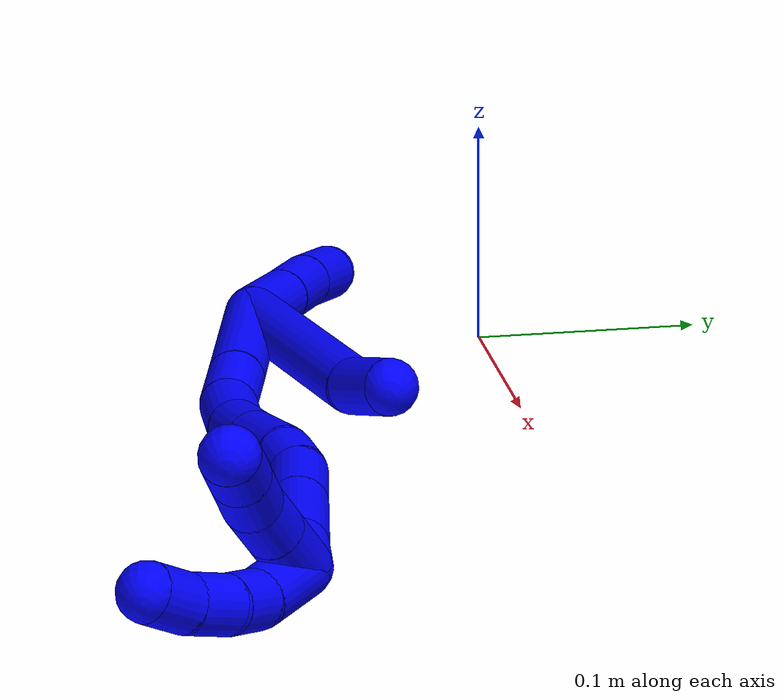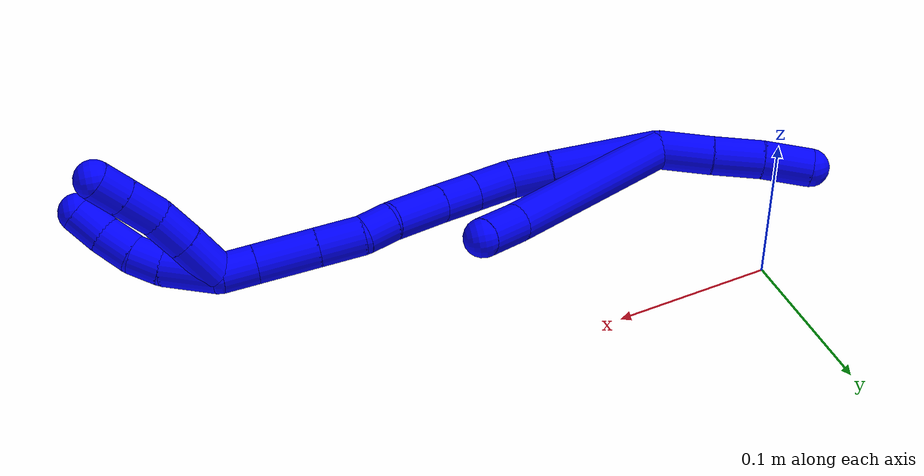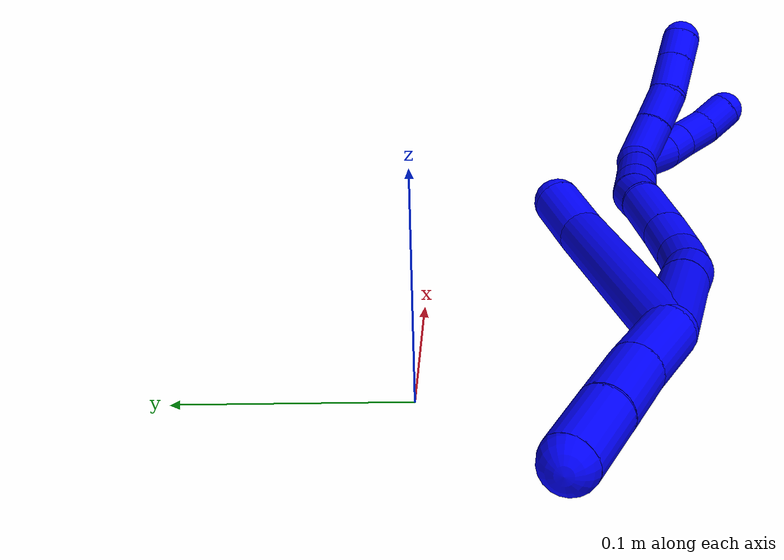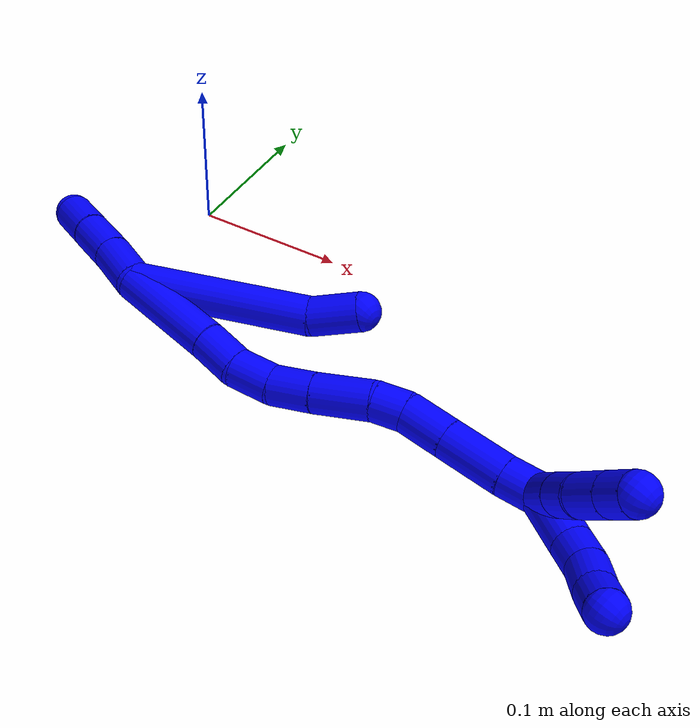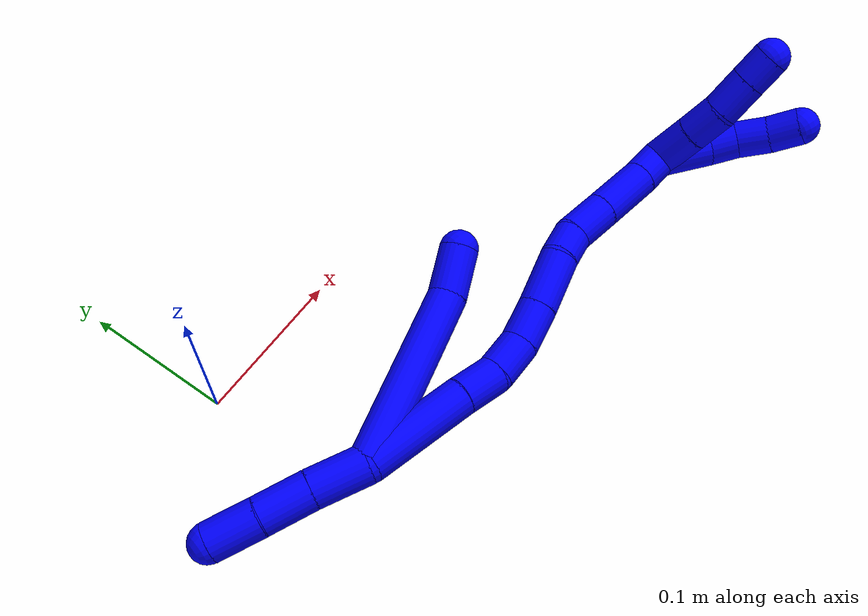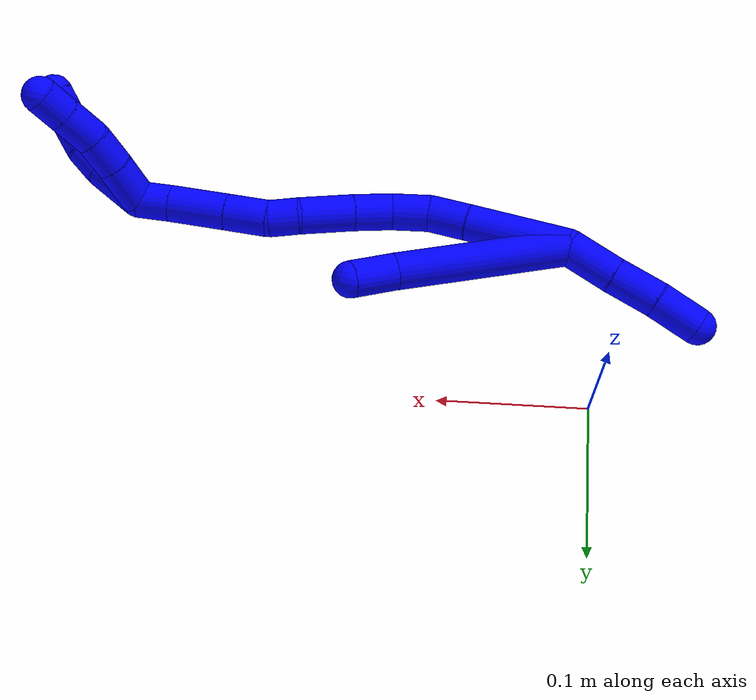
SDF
<sdf version="1.7">
 <world name="default">
  <model name="photoneo_s_sensor">
   <static>1</static>
   <pose>0 0 2 1.57079 1.57079 3.14159</pose>
   <link name="link">
    <inertial><mass>0.1</mass></inertial>
    <sensor name="sensor" type="depth">
     <update_rate>30</update_rate>
     <camera>
      <horizontal_fov>1.22</horizontal_fov>
      <image><width>1920</width><height>1200</height><format>B8G8R8</format></image>
      <clip><near>0.1</near><far>4</far></clip>
      <depth_camera><output>points</output></depth_camera>
     </camera>
     <plugin name="camera_plugin" filename="libgazebo_ros_depth_camera.so">
      <baseline>0.2</baseline>
      <alwaysOn>1</alwaysOn>
      <updateRate>0.0</updateRate>
      <cameraName>camera_ir</cameraName>
      <imageTopicName>/camera/color/image_raw</imageTopicName>
      <cameraInfoTopicName>/camera/color/camera_info</cameraInfoTopicName>
      <depthImageTopicName>/camera/depth/image_raw</depthImageTopicName>
      <depthImageCameraInfoTopicName>/camera/depth/camera_info</depthImageCameraInfoTopicName>
      <pointCloudTopicName>/camera/depth/points</pointCloudTopicName>
      <frameName>fr_optical</frameName>
      <pointCloudCutoff>0.1</pointCloudCutoff>
      <pointCloudCutoffMax>2.0</pointCloudCutoffMax>
      <distortionK1>0</distortionK1>
      <distortionK2>0</distortionK2>
      <distortionK3>0</distortionK3>
      <distortionT1>0</distortionT1>
      <distortionT2>0</distortionT2>
      <CxPrime>0</CxPrime>
      <Cx>0</Cx>
      <Cy>0</Cy>
      <focalLength>0</focalLength>
      <hackBaseline>0</hackBaseline>
     </plugin>
    </sensor>
   </link>
  </model>
  <model name="bin">
   <static>1</static>
   <link name="bottom">
    <collision name="collision-bottom">
     <pose>0 0 -0.01 0 -0 0</pose>
     <geometry><box><size>0.8 0.6 0.02</size></box></geometry>
     <surface>
      <friction><ode><mu>100</mu><mu2>100</mu2></ode></friction>
      <contact><collide_bitmask>65535</collide_bitmask></contact>
     </surface>
    </collision>
   </link>
   <link name="west_wall">
    <collision name="collision-west_wall">
     <pose>-0.41 0 0.1 0 -0 0</pose>
     <geometry><box><size>0.02 0.6 0.2</size></box></geometry>
     <surface>
      <friction><ode><mu>100</mu><mu2>100</mu2></ode></friction>
      <contact><collide_bitmask>65535</collide_bitmask></contact>
     </surface>
    </collision>
   </link>
   <link name="east_wall">
    <collision name="collision-east_wall">
     <pose>0.41 0 0.1 0 -0 0</pose>
     <geometry><box><size>0.02 0.6 0.2</size></box></geometry>
     <surface>
      <friction><ode><mu>100</mu><mu2>100</mu2></ode></friction>
      <contact><collide_bitmask>65535</collide_bitmask></contact>
     </surface>
    </collision>
   </link>
   <link name="south_wall">
    <collision name="collision-south_wall">
     <pose>0 -0.31 0.1 0 -0 0</pose>
     <geometry><box><size>0.8 0.02 0.2</size></box></geometry>
     <surface>
      <friction><ode><mu>100</mu><mu2>100</mu2></ode></friction>
      <contact><collide_bitmask>65535</collide_bitmask></contact>
     </surface>
    </collision>
   </link>
   <link name="north_wall">
    <collision name="collision-north_wall">
     <pose>0 0.31 0.1 0 -0 0</pose>
     <geometry><box><size>0.8 0.02 0.2</size></box></geometry>
     <surface>
      <friction><ode><mu>100</mu><mu2>100</mu2></ode></friction>
      <contact><collide_bitmask>65535</collide_bitmask></contact>
     </surface>
    </collision>
   </link>
  </model>
  <model name="1">
   <static>0</static>
   <link name="1">
    <collision name="collision-cylinder-e_1_2_8">
     <pose>-0.008791 -0.025828 0.05237 0.458175 -0.149434 -0.034907</pose>
     <geometry><cylinder><radius>0.0125</radius><length>0.118102</length></cylinder></geometry>
     <surface>
      <friction><ode><mu>1.16</mu><mu2>1.16</mu2><slip1>0</slip1><slip2>0</slip2></ode></friction>
      <contact><ode><kp>1e+06</kp><kd>1</kd><max_vel>0</max_vel><min_depth>0.001</min_depth></ode></contact>
     </surface>
    </collision>
    <visual name="visual-cylinder-e_1_2_8">
     <pose>-0.008791 -0.025828 0.05237 0.458175 -0.149434 -0.034907</pose>
     <geometry><cylinder><radius>0.0125</radius><length>0.118102</length></cylinder></geometry>
     <material><ambient>0 0 1 1</ambient></material>
    </visual>
    <collision name="collision-cylinder-e_2_8_6">
     <pose>-0.017736 -0.062003 0.116877 0.706011 -0.009597 -0.003536</pose>
     <geometry><cylinder><radius>0.0125</radius><length>0.031898</length></cylinder></geometry>
     <surface>
      <friction><ode><mu>1.16</mu><mu2>1.16</mu2><slip1>0</slip1><slip2>0</slip2></ode></friction>
      <contact><ode><kp>1e+06</kp><kd>1</kd><max_vel>0</max_vel><min_depth>0.001</min_depth></ode></contact>
     </surface>
    </collision>
    <visual name="visual-cylinder-e_2_8_6">
     <pose>-0.017736 -0.062003 0.116877 0.706011 -0.009597 -0.003536</pose>
     <geometry><cylinder><radius>0.0125</radius><length>0.031898</length></cylinder></geometry>
     <material><ambient>0 0 1 1</ambient></material>
    </visual>
    <collision name="collision-cylinder-e_1_2_9">
     <pose>-0.005008 -0.002702 -0.016826 2.98236 -0.285837 -2.12909</pose>
     <geometry><cylinder><radius>0.0125</radius><length>0.035524</length></cylinder></geometry>
     <surface>
      <friction><ode><mu>1.16</mu><mu2>1.16</mu2><slip1>0</slip1><slip2>0</slip2></ode></friction>
      <contact><ode><kp>1e+06</kp><kd>1</kd><max_vel>0</max_vel><min_depth>0.001</min_depth></ode></contact>
     </surface>
    </collision>
    <visual name="visual-cylinder-e_1_2_9">
     <pose>-0.005008 -0.002702 -0.016826 2.98236 -0.285837 -2.12909</pose>
     <geometry><cylinder><radius>0.0125</radius><length>0.035524</length></cylinder></geometry>
     <material><ambient>0 0 1 1</ambient></material>
    </visual>
    <collision name="collision-cylinder-e_2_9_10">
     <pose>-0.014304 -0.00707 -0.049266 3.03532 -0.266575 -2.38634</pose>
     <geometry><cylinder><radius>0.0125</radius><length>0.032556</length></cylinder></geometry>
     <surface>
      <friction><ode><mu>1.16</mu><mu2>1.16</mu2><slip1>0</slip1><slip2>0</slip2></ode></friction>
      <contact><ode><kp>1e+06</kp><kd>1</kd><max_vel>0</max_vel><min_depth>0.001</min_depth></ode></contact>
     </surface>
    </collision>
    <visual name="visual-cylinder-e_2_9_10">
     <pose>-0.014304 -0.00707 -0.049266 3.03532 -0.266575 -2.38634</pose>
     <geometry><cylinder><radius>0.0125</radius><length>0.032556</length></cylinder></geometry>
     <material><ambient>0 0 1 1</ambient></material>
    </visual>
    <collision name="collision-cylinder-e_3_10_5">
     <pose>-0.024059 -0.010304 -0.079792 3.03676 -0.349612 -2.56407</pose>
     <geometry><cylinder><radius>0.0125</radius><length>0.03192</length></cylinder></geometry>
     <surface>
      <friction><ode><mu>1.16</mu><mu2>1.16</mu2><slip1>0</slip1><slip2>0</slip2></ode></friction>
      <contact><ode><kp>1e+06</kp><kd>1</kd><max_vel>0</max_vel><min_depth>0.001</min_depth></ode></contact>
     </surface>
    </collision>
    <visual name="visual-cylinder-e_3_10_5">
     <pose>-0.024059 -0.010304 -0.079792 3.03676 -0.349612 -2.56407</pose>
     <geometry><cylinder><radius>0.0125</radius><length>0.03192</length></cylinder></geometry>
     <material><ambient>0 0 1 1</ambient></material>
    </visual>
    <collision name="collision-cylinder-e_1_2_11">
     <pose>0.000211 0.000246 0.035094 -0.007007 0.006008 -2.1e-05</pose>
     <geometry><cylinder><radius>0.0125</radius><length>0.07019</length></cylinder></geometry>
     <surface>
      <friction><ode><mu>1.16</mu><mu2>1.16</mu2><slip1>0</slip1><slip2>0</slip2></ode></friction>
      <contact><ode><kp>1e+06</kp><kd>1</kd><max_vel>0</max_vel><min_depth>0.001</min_depth></ode></contact>
     </surface>
    </collision>
    <visual name="visual-cylinder-e_1_2_11">
     <pose>0.000211 0.000246 0.035094 -0.007007 0.006008 -2.1e-05</pose>
     <geometry><cylinder><radius>0.0125</radius><length>0.07019</length></cylinder></geometry>
     <material><ambient>0 0 1 1</ambient></material>
    </visual>
    <collision name="collision-cylinder-e_2_11_12">
     <pose>6e-06 0.00124 0.083705 -0.05529 -0.030679 0.000848</pose>
     <geometry><cylinder><radius>0.0125</radius><length>0.027091</length></cylinder></geometry>
     <surface>
      <friction><ode><mu>1.16</mu><mu2>1.16</mu2><slip1>0</slip1><slip2>0</slip2></ode></friction>
      <contact><ode><kp>1e+06</kp><kd>1</kd><max_vel>0</max_vel><min_depth>0.001</min_depth></ode></contact>
     </surface>
    </collision>
    <visual name="visual-cylinder-e_2_11_12">
     <pose>6e-06 0.00124 0.083705 -0.05529 -0.030679 0.000848</pose>
     <geometry><cylinder><radius>0.0125</radius><length>0.027091</length></cylinder></geometry>
     <material><ambient>0 0 1 1</ambient></material>
    </visual>
    <collision name="collision-cylinder-e_3_12_13">
     <pose>-0.001552 -0.000825 0.110017 0.216466 -0.086996 -0.009459</pose>
     <geometry><cylinder><radius>0.0125</radius><length>0.026298</length></cylinder></geometry>
     <surface>
      <friction><ode><mu>1.16</mu><mu2>1.16</mu2><slip1>0</slip1><slip2>0</slip2></ode></friction>
      <contact><ode><kp>1e+06</kp><kd>1</kd><max_vel>0</max_vel><min_depth>0.001</min_depth></ode></contact>
     </surface>
    </collision>
    <visual name="visual-cylinder-e_3_12_13">
     <pose>-0.001552 -0.000825 0.110017 0.216466 -0.086996 -0.009459</pose>
     <geometry><cylinder><radius>0.0125</radius><length>0.026298</length></cylinder></geometry>
     <material><ambient>0 0 1 1</ambient></material>
    </visual>
    <collision name="collision-cylinder-e_4_13_14">
     <pose>-0.003024 -0.009472 0.134941 0.448256 -0.02448 -0.005581</pose>
     <geometry><cylinder><radius>0.0125</radius><length>0.026927</length></cylinder></geometry>
     <surface>
      <friction><ode><mu>1.16</mu><mu2>1.16</mu2><slip1>0</slip1><slip2>0</slip2></ode></friction>
      <contact><ode><kp>1e+06</kp><kd>1</kd><max_vel>0</max_vel><min_depth>0.001</min_depth></ode></contact>
     </surface>
    </collision>
    <visual name="visual-cylinder-e_4_13_14">
     <pose>-0.003024 -0.009472 0.134941 0.448256 -0.02448 -0.005581</pose>
     <geometry><cylinder><radius>0.0125</radius><length>0.026927</length></cylinder></geometry>
     <material><ambient>0 0 1 1</ambient></material>
    </visual>
    <collision name="collision-cylinder-e_5_14_15">
     <pose>-0.003969 -0.024215 0.163365 0.500378 -0.033126 -0.008466</pose>
     <geometry><cylinder><radius>0.0125</radius><length>0.037164</length></cylinder></geometry>
     <surface>
      <friction><ode><mu>1.16</mu><mu2>1.16</mu2><slip1>0</slip1><slip2>0</slip2></ode></friction>
      <contact><ode><kp>1e+06</kp><kd>1</kd><max_vel>0</max_vel><min_depth>0.001</min_depth></ode></contact>
     </surface>
    </collision>
    <visual name="visual-cylinder-e_5_14_15">
     <pose>-0.003969 -0.024215 0.163365 0.500378 -0.033126 -0.008466</pose>
     <geometry><cylinder><radius>0.0125</radius><length>0.037164</length></cylinder></geometry>
     <material><ambient>0 0 1 1</ambient></material>
    </visual>
    <collision name="collision-cylinder-e_6_15_16">
     <pose>-0.006346 -0.036482 0.189204 0.338189 -0.172403 -0.029504</pose>
     <geometry><cylinder><radius>0.0125</radius><length>0.020539</length></cylinder></geometry>
     <surface>
      <friction><ode><mu>1.16</mu><mu2>1.16</mu2><slip1>0</slip1><slip2>0</slip2></ode></friction>
      <contact><ode><kp>1e+06</kp><kd>1</kd><max_vel>0</max_vel><min_depth>0.001</min_depth></ode></contact>
     </surface>
    </collision>
    <visual name="visual-cylinder-e_6_15_16">
     <pose>-0.006346 -0.036482 0.189204 0.338189 -0.172403 -0.029504</pose>
     <geometry><cylinder><radius>0.0125</radius><length>0.020539</length></cylinder></geometry>
     <material><ambient>0 0 1 1</ambient></material>
    </visual>
    <collision name="collision-cylinder-e_7_16_17">
     <pose>-0.008797 -0.040897 0.213378 0.072219 -0.046934 -0.001696</pose>
     <geometry><cylinder><radius>0.0125</radius><length>0.029367</length></cylinder></geometry>
     <surface>
      <friction><ode><mu>1.16</mu><mu2>1.16</mu2><slip1>0</slip1><slip2>0</slip2></ode></friction>
      <contact><ode><kp>1e+06</kp><kd>1</kd><max_vel>0</max_vel><min_depth>0.001</min_depth></ode></contact>
     </surface>
    </collision>
    <visual name="visual-cylinder-e_7_16_17">
     <pose>-0.008797 -0.040897 0.213378 0.072219 -0.046934 -0.001696</pose>
     <geometry><cylinder><radius>0.0125</radius><length>0.029367</length></cylinder></geometry>
     <material><ambient>0 0 1 1</ambient></material>
    </visual>
    <collision name="collision-cylinder-e_8_17_18">
     <pose>-0.010405 -0.043526 0.247854 0.078953 -0.046175 -0.001824</pose>
     <geometry><cylinder><radius>0.0125</radius><length>0.039861</length></cylinder></geometry>
     <surface>
      <friction><ode><mu>1.16</mu><mu2>1.16</mu2><slip1>0</slip1><slip2>0</slip2></ode></friction>
      <contact><ode><kp>1e+06</kp><kd>1</kd><max_vel>0</max_vel><min_depth>0.001</min_depth></ode></contact>
     </surface>
    </collision>
    <visual name="visual-cylinder-e_8_17_18">
     <pose>-0.010405 -0.043526 0.247854 0.078953 -0.046175 -0.001824</pose>
     <geometry><cylinder><radius>0.0125</radius><length>0.039861</length></cylinder></geometry>
     <material><ambient>0 0 1 1</ambient></material>
    </visual>
    <collision name="collision-cylinder-e_9_18_1">
     <pose>-0.011648 -0.046852 0.278841 0.156381 -0.028635 -0.002244</pose>
     <geometry><cylinder><radius>0.0125</radius><length>0.022563</length></cylinder></geometry>
     <surface>
      <friction><ode><mu>1.16</mu><mu2>1.16</mu2><slip1>0</slip1><slip2>0</slip2></ode></friction>
      <contact><ode><kp>1e+06</kp><kd>1</kd><max_vel>0</max_vel><min_depth>0.001</min_depth></ode></contact>
     </surface>
    </collision>
    <visual name="visual-cylinder-e_9_18_1">
     <pose>-0.011648 -0.046852 0.278841 0.156381 -0.028635 -0.002244</pose>
     <geometry><cylinder><radius>0.0125</radius><length>0.022563</length></cylinder></geometry>
     <material><ambient>0 0 1 1</ambient></material>
    </visual>
    <collision name="collision-cylinder-e_1_1_19">
     <pose>-0.007431 -0.042733 0.306326 -0.345022 0.255694 -0.04479</pose>
     <geometry><cylinder><radius>0.0125</radius><length>0.035908</length></cylinder></geometry>
     <surface>
      <friction><ode><mu>1.16</mu><mu2>1.16</mu2><slip1>0</slip1><slip2>0</slip2></ode></friction>
      <contact><ode><kp>1e+06</kp><kd>1</kd><max_vel>0</max_vel><min_depth>0.001</min_depth></ode></contact>
     </surface>
    </collision>
    <visual name="visual-cylinder-e_1_1_19">
     <pose>-0.007431 -0.042733 0.306326 -0.345022 0.255694 -0.04479</pose>
     <geometry><cylinder><radius>0.0125</radius><length>0.035908</length></cylinder></geometry>
     <material><ambient>0 0 1 1</ambient></material>
    </visual>
    <collision name="collision-cylinder-e_2_19_20">
     <pose>0.002067 -0.034008 0.330966 -0.331046 0.514434 -0.087827</pose>
     <geometry><cylinder><radius>0.0125</radius><length>0.020147</length></cylinder></geometry>
     <surface>
      <friction><ode><mu>1.16</mu><mu2>1.16</mu2><slip1>0</slip1><slip2>0</slip2></ode></friction>
      <contact><ode><kp>1e+06</kp><kd>1</kd><max_vel>0</max_vel><min_depth>0.001</min_depth></ode></contact>
     </surface>
    </collision>
    <visual name="visual-cylinder-e_2_19_20">
     <pose>0.002067 -0.034008 0.330966 -0.331046 0.514434 -0.087827</pose>
     <geometry><cylinder><radius>0.0125</radius><length>0.020147</length></cylinder></geometry>
     <material><ambient>0 0 1 1</ambient></material>
    </visual>
    <collision name="collision-cylinder-e_3_20_21">
     <pose>0.01406 -0.027057 0.346846 -0.495627 0.684413 -0.179772</pose>
     <geometry><cylinder><radius>0.0125</radius><length>0.02226</length></cylinder></geometry>
     <surface>
      <friction><ode><mu>1.16</mu><mu2>1.16</mu2><slip1>0</slip1><slip2>0</slip2></ode></friction>
      <contact><ode><kp>1e+06</kp><kd>1</kd><max_vel>0</max_vel><min_depth>0.001</min_depth></ode></contact>
     </surface>
    </collision>
    <visual name="visual-cylinder-e_3_20_21">
     <pose>0.01406 -0.027057 0.346846 -0.495627 0.684413 -0.179772</pose>
     <geometry><cylinder><radius>0.0125</radius><length>0.02226</length></cylinder></geometry>
     <material><ambient>0 0 1 1</ambient></material>
    </visual>
    <collision name="collision-cylinder-e_4_21_4">
     <pose>0.029175 -0.020322 0.361167 -0.372692 0.840614 -0.168129</pose>
     <geometry><cylinder><radius>0.0125</radius><length>0.021685</length></cylinder></geometry>
     <surface>
      <friction><ode><mu>1.16</mu><mu2>1.16</mu2><slip1>0</slip1><slip2>0</slip2></ode></friction>
      <contact><ode><kp>1e+06</kp><kd>1</kd><max_vel>0</max_vel><min_depth>0.001</min_depth></ode></contact>
     </surface>
    </collision>
    <visual name="visual-cylinder-e_4_21_4">
     <pose>0.029175 -0.020322 0.361167 -0.372692 0.840614 -0.168129</pose>
     <geometry><cylinder><radius>0.0125</radius><length>0.021685</length></cylinder></geometry>
     <material><ambient>0 0 1 1</ambient></material>
    </visual>
    <collision name="collision-cylinder-e_1_1_22">
     <pose>0.000334 -0.050775 0.298143 0.259411 0.969299 0.137145</pose>
     <geometry><cylinder><radius>0.0125</radius><length>0.02985</length></cylinder></geometry>
     <surface>
      <friction><ode><mu>1.16</mu><mu2>1.16</mu2><slip1>0</slip1><slip2>0</slip2></ode></friction>
      <contact><ode><kp>1e+06</kp><kd>1</kd><max_vel>0</max_vel><min_depth>0.001</min_depth></ode></contact>
     </surface>
    </collision>
    <visual name="visual-cylinder-e_1_1_22">
     <pose>0.000334 -0.050775 0.298143 0.259411 0.969299 0.137145</pose>
     <geometry><cylinder><radius>0.0125</radius><length>0.02985</length></cylinder></geometry>
     <material><ambient>0 0 1 1</ambient></material>
    </visual>
    <collision name="collision-cylinder-e_2_22_23">
     <pose>0.022241 -0.054796 0.313221 0.26203 0.930125 0.132044</pose>
     <geometry><cylinder><radius>0.0125</radius><length>0.023952</length></cylinder></geometry>
     <surface>
      <friction><ode><mu>1.16</mu><mu2>1.16</mu2><slip1>0</slip1><slip2>0</slip2></ode></friction>
      <contact><ode><kp>1e+06</kp><kd>1</kd><max_vel>0</max_vel><min_depth>0.001</min_depth></ode></contact>
     </surface>
    </collision>
    <visual name="visual-cylinder-e_2_22_23">
     <pose>0.022241 -0.054796 0.313221 0.26203 0.930125 0.132044</pose>
     <geometry><cylinder><radius>0.0125</radius><length>0.023952</length></cylinder></geometry>
     <material><ambient>0 0 1 1</ambient></material>
    </visual>
    <collision name="collision-cylinder-e_3_23_24">
     <pose>0.040711 -0.060439 0.32867 0.417838 0.759606 0.168862</pose>
     <geometry><cylinder><radius>0.0125</radius><length>0.025757</length></cylinder></geometry>
     <surface>
      <friction><ode><mu>1.16</mu><mu2>1.16</mu2><slip1>0</slip1><slip2>0</slip2></ode></friction>
      <contact><ode><kp>1e+06</kp><kd>1</kd><max_vel>0</max_vel><min_depth>0.001</min_depth></ode></contact>
     </surface>
    </collision>
    <visual name="visual-cylinder-e_3_23_24">
     <pose>0.040711 -0.060439 0.32867 0.417838 0.759606 0.168862</pose>
     <geometry><cylinder><radius>0.0125</radius><length>0.025757</length></cylinder></geometry>
     <material><ambient>0 0 1 1</ambient></material>
    </visual>
    <collision name="collision-cylinder-e_4_24_3">
     <pose>0.05659 -0.067202 0.344021 0.411286 0.755923 0.165266</pose>
     <geometry><cylinder><radius>0.0125</radius><length>0.020441</length></cylinder></geometry>
     <surface>
      <friction><ode><mu>1.16</mu><mu2>1.16</mu2><slip1>0</slip1><slip2>0</slip2></ode></friction>
      <contact><ode><kp>1e+06</kp><kd>1</kd><max_vel>0</max_vel><min_depth>0.001</min_depth></ode></contact>
     </surface>
    </collision>
    <visual name="visual-cylinder-e_4_24_3">
     <pose>0.05659 -0.067202 0.344021 0.411286 0.755923 0.165266</pose>
     <geometry><cylinder><radius>0.0125</radius><length>0.020441</length></cylinder></geometry>
     <material><ambient>0 0 1 1</ambient></material>
    </visual>
    <collision name="collision-sphere-3">
     <pose>0.063601 -0.070175 0.350838 0 -0 0</pose>
     <geometry><sphere><radius>0.0125</radius></sphere></geometry>
     <surface>
      <friction><ode><mu>1.16</mu><mu2>1.16</mu2><slip1>0</slip1><slip2>0</slip2></ode></friction>
      <contact><ode><kp>1e+06</kp><kd>1</kd><max_vel>0</max_vel><min_depth>0.001</min_depth></ode></contact>
     </surface>
    </collision>
    <visual name="visual-sphere-3">
     <pose>0.063601 -0.070175 0.350838 0 -0 0</pose>
     <geometry><sphere><radius>0.0125</radius></sphere></geometry>
     <material><ambient>0 0 1 1</ambient></material>
    </visual>
    <collision name="collision-sphere-24">
     <pose>0.049579 -0.064229 0.337204 0 -0 0</pose>
     <geometry><sphere><radius>0.0125</radius></sphere></geometry>
     <surface>
      <friction><ode><mu>1.16</mu><mu2>1.16</mu2><slip1>0</slip1><slip2>0</slip2></ode></friction>
      <contact><ode><kp>1e+06</kp><kd>1</kd><max_vel>0</max_vel><min_depth>0.001</min_depth></ode></contact>
     </surface>
    </collision>
    <visual name="visual-sphere-24">
     <pose>0.049579 -0.064229 0.337204 0 -0 0</pose>
     <geometry><sphere><radius>0.0125</radius></sphere></geometry>
     <material><ambient>0 0 1 1</ambient></material>
    </visual>
    <collision name="collision-sphere-23">
     <pose>0.031842 -0.05665 0.320135 0 -0 0</pose>
     <geometry><sphere><radius>0.0125</radius></sphere></geometry>
     <surface>
      <friction><ode><mu>1.16</mu><mu2>1.16</mu2><slip1>0</slip1><slip2>0</slip2></ode></friction>
      <contact><ode><kp>1e+06</kp><kd>1</kd><max_vel>0</max_vel><min_depth>0.001</min_depth></ode></contact>
     </surface>
    </collision>
    <visual name="visual-sphere-23">
     <pose>0.031842 -0.05665 0.320135 0 -0 0</pose>
     <geometry><sphere><radius>0.0125</radius></sphere></geometry>
     <material><ambient>0 0 1 1</ambient></material>
    </visual>
    <collision name="collision-sphere-22">
     <pose>0.01264 -0.052941 0.306306 0 -0 0</pose>
     <geometry><sphere><radius>0.0125</radius></sphere></geometry>
     <surface>
      <friction><ode><mu>1.16</mu><mu2>1.16</mu2><slip1>0</slip1><slip2>0</slip2></ode></friction>
      <contact><ode><kp>1e+06</kp><kd>1</kd><max_vel>0</max_vel><min_depth>0.001</min_depth></ode></contact>
     </surface>
    </collision>
    <visual name="visual-sphere-22">
     <pose>0.01264 -0.052941 0.306306 0 -0 0</pose>
     <geometry><sphere><radius>0.0125</radius></sphere></geometry>
     <material><ambient>0 0 1 1</ambient></material>
    </visual>
    <collision name="collision-sphere-4">
     <pose>0.037253 -0.017689 0.367903 0 -0 0</pose>
     <geometry><sphere><radius>0.0125</radius></sphere></geometry>
     <surface>
      <friction><ode><mu>1.16</mu><mu2>1.16</mu2><slip1>0</slip1><slip2>0</slip2></ode></friction>
      <contact><ode><kp>1e+06</kp><kd>1</kd><max_vel>0</max_vel><min_depth>0.001</min_depth></ode></contact>
     </surface>
    </collision>
    <visual name="visual-sphere-4">
     <pose>0.037253 -0.017689 0.367903 0 -0 0</pose>
     <geometry><sphere><radius>0.0125</radius></sphere></geometry>
     <material><ambient>0 0 1 1</ambient></material>
    </visual>
    <collision name="collision-sphere-21">
     <pose>0.021097 -0.022955 0.354431 0 -0 0</pose>
     <geometry><sphere><radius>0.0125</radius></sphere></geometry>
     <surface>
      <friction><ode><mu>1.16</mu><mu2>1.16</mu2><slip1>0</slip1><slip2>0</slip2></ode></friction>
      <contact><ode><kp>1e+06</kp><kd>1</kd><max_vel>0</max_vel><min_depth>0.001</min_depth></ode></contact>
     </surface>
    </collision>
    <visual name="visual-sphere-21">
     <pose>0.021097 -0.022955 0.354431 0 -0 0</pose>
     <geometry><sphere><radius>0.0125</radius></sphere></geometry>
     <material><ambient>0 0 1 1</ambient></material>
    </visual>
    <collision name="collision-sphere-20">
     <pose>0.007023 -0.031158 0.33926 0 -0 0</pose>
     <geometry><sphere><radius>0.0125</radius></sphere></geometry>
     <surface>
      <friction><ode><mu>1.16</mu><mu2>1.16</mu2><slip1>0</slip1><slip2>0</slip2></ode></friction>
      <contact><ode><kp>1e+06</kp><kd>1</kd><max_vel>0</max_vel><min_depth>0.001</min_depth></ode></contact>
     </surface>
    </collision>
    <visual name="visual-sphere-20">
     <pose>0.007023 -0.031158 0.33926 0 -0 0</pose>
     <geometry><sphere><radius>0.0125</radius></sphere></geometry>
     <material><ambient>0 0 1 1</ambient></material>
    </visual>
    <collision name="collision-sphere-5">
     <pose>-0.029526 -0.011873 -0.094705 0 -0 0</pose>
     <geometry><sphere><radius>0.0125</radius></sphere></geometry>
     <surface>
      <friction><ode><mu>1.16</mu><mu2>1.16</mu2><slip1>0</slip1><slip2>0</slip2></ode></friction>
      <contact><ode><kp>1e+06</kp><kd>1</kd><max_vel>0</max_vel><min_depth>0.001</min_depth></ode></contact>
     </surface>
    </collision>
    <visual name="visual-sphere-5">
     <pose>-0.029526 -0.011873 -0.094705 0 -0 0</pose>
     <geometry><sphere><radius>0.0125</radius></sphere></geometry>
     <material><ambient>0 0 1 1</ambient></material>
    </visual>
    <collision name="collision-sphere-10">
     <pose>-0.018592 -0.008735 -0.06488 0 -0 0</pose>
     <geometry><sphere><radius>0.0125</radius></sphere></geometry>
     <surface>
      <friction><ode><mu>1.16</mu><mu2>1.16</mu2><slip1>0</slip1><slip2>0</slip2></ode></friction>
      <contact><ode><kp>1e+06</kp><kd>1</kd><max_vel>0</max_vel><min_depth>0.001</min_depth></ode></contact>
     </surface>
    </collision>
    <visual name="visual-sphere-10">
     <pose>-0.018592 -0.008735 -0.06488 0 -0 0</pose>
     <geometry><sphere><radius>0.0125</radius></sphere></geometry>
     <material><ambient>0 0 1 1</ambient></material>
    </visual>
    <collision name="collision-sphere-6">
     <pose>-0.017889 -0.07235 0.129013 0 -0 0</pose>
     <geometry><sphere><radius>0.0125</radius></sphere></geometry>
     <surface>
      <friction><ode><mu>1.16</mu><mu2>1.16</mu2><slip1>0</slip1><slip2>0</slip2></ode></friction>
      <contact><ode><kp>1e+06</kp><kd>1</kd><max_vel>0</max_vel><min_depth>0.001</min_depth></ode></contact>
     </surface>
    </collision>
    <visual name="visual-sphere-6">
     <pose>-0.017889 -0.07235 0.129013 0 -0 0</pose>
     <geometry><sphere><radius>0.0125</radius></sphere></geometry>
     <material><ambient>0 0 1 1</ambient></material>
    </visual>
    <collision name="collision-sphere-9">
     <pose>-0.010016 -0.005404 -0.033651 0 -0 0</pose>
     <geometry><sphere><radius>0.0125</radius></sphere></geometry>
     <surface>
      <friction><ode><mu>1.16</mu><mu2>1.16</mu2><slip1>0</slip1><slip2>0</slip2></ode></friction>
      <contact><ode><kp>1e+06</kp><kd>1</kd><max_vel>0</max_vel><min_depth>0.001</min_depth></ode></contact>
     </surface>
    </collision>
    <visual name="visual-sphere-9">
     <pose>-0.010016 -0.005404 -0.033651 0 -0 0</pose>
     <geometry><sphere><radius>0.0125</radius></sphere></geometry>
     <material><ambient>0 0 1 1</ambient></material>
    </visual>
    <collision name="collision-sphere-2">
     <geometry><sphere><radius>0.0125</radius></sphere></geometry>
     <surface>
      <friction><ode><mu>1.16</mu><mu2>1.16</mu2><slip1>0</slip1><slip2>0</slip2></ode></friction>
      <contact><ode><kp>1e+06</kp><kd>1</kd><max_vel>0</max_vel><min_depth>0.001</min_depth></ode></contact>
     </surface>
    </collision>
    <visual name="visual-sphere-2">
     <geometry><sphere><radius>0.0125</radius></sphere></geometry>
     <material><ambient>0 0 1 1</ambient></material>
    </visual>
    <collision name="collision-sphere-19">
     <pose>-0.00289 -0.036859 0.322673 0 -0 0</pose>
     <geometry><sphere><radius>0.0125</radius></sphere></geometry>
     <surface>
      <friction><ode><mu>1.16</mu><mu2>1.16</mu2><slip1>0</slip1><slip2>0</slip2></ode></friction>
      <contact><ode><kp>1e+06</kp><kd>1</kd><max_vel>0</max_vel><min_depth>0.001</min_depth></ode></contact>
     </surface>
    </collision>
    <visual name="visual-sphere-19">
     <pose>-0.00289 -0.036859 0.322673 0 -0 0</pose>
     <geometry><sphere><radius>0.0125</radius></sphere></geometry>
     <material><ambient>0 0 1 1</ambient></material>
    </visual>
    <collision name="collision-sphere-8">
     <pose>-0.017583 -0.051656 0.104741 0 -0 0</pose>
     <geometry><sphere><radius>0.0125</radius></sphere></geometry>
     <surface>
      <friction><ode><mu>1.16</mu><mu2>1.16</mu2><slip1>0</slip1><slip2>0</slip2></ode></friction>
      <contact><ode><kp>1e+06</kp><kd>1</kd><max_vel>0</max_vel><min_depth>0.001</min_depth></ode></contact>
     </surface>
    </collision>
    <visual name="visual-sphere-8">
     <pose>-0.017583 -0.051656 0.104741 0 -0 0</pose>
     <geometry><sphere><radius>0.0125</radius></sphere></geometry>
     <material><ambient>0 0 1 1</ambient></material>
    </visual>
    <collision name="collision-sphere-11">
     <pose>0.000422 0.000492 0.070187 0 -0 0</pose>
     <geometry><sphere><radius>0.0125</radius></sphere></geometry>
     <surface>
      <friction><ode><mu>1.16</mu><mu2>1.16</mu2><slip1>0</slip1><slip2>0</slip2></ode></friction>
      <contact><ode><kp>1e+06</kp><kd>1</kd><max_vel>0</max_vel><min_depth>0.001</min_depth></ode></contact>
     </surface>
    </collision>
    <visual name="visual-sphere-11">
     <pose>0.000422 0.000492 0.070187 0 -0 0</pose>
     <geometry><sphere><radius>0.0125</radius></sphere></geometry>
     <material><ambient>0 0 1 1</ambient></material>
    </visual>
    <collision name="collision-sphere-12">
     <pose>-0.000409 0.001988 0.097224 0 -0 0</pose>
     <geometry><sphere><radius>0.0125</radius></sphere></geometry>
     <surface>
      <friction><ode><mu>1.16</mu><mu2>1.16</mu2><slip1>0</slip1><slip2>0</slip2></ode></friction>
      <contact><ode><kp>1e+06</kp><kd>1</kd><max_vel>0</max_vel><min_depth>0.001</min_depth></ode></contact>
     </surface>
    </collision>
    <visual name="visual-sphere-12">
     <pose>-0.000409 0.001988 0.097224 0 -0 0</pose>
     <geometry><sphere><radius>0.0125</radius></sphere></geometry>
     <material><ambient>0 0 1 1</ambient></material>
    </visual>
    <collision name="collision-sphere-13">
     <pose>-0.002694 -0.003639 0.122811 0 -0 0</pose>
     <geometry><sphere><radius>0.0125</radius></sphere></geometry>
     <surface>
      <friction><ode><mu>1.16</mu><mu2>1.16</mu2><slip1>0</slip1><slip2>0</slip2></ode></friction>
      <contact><ode><kp>1e+06</kp><kd>1</kd><max_vel>0</max_vel><min_depth>0.001</min_depth></ode></contact>
     </surface>
    </collision>
    <visual name="visual-sphere-13">
     <pose>-0.002694 -0.003639 0.122811 0 -0 0</pose>
     <geometry><sphere><radius>0.0125</radius></sphere></geometry>
     <material><ambient>0 0 1 1</ambient></material>
    </visual>
    <collision name="collision-sphere-14">
     <pose>-0.003353 -0.015305 0.14707 0 -0 0</pose>
     <geometry><sphere><radius>0.0125</radius></sphere></geometry>
     <surface>
      <friction><ode><mu>1.16</mu><mu2>1.16</mu2><slip1>0</slip1><slip2>0</slip2></ode></friction>
      <contact><ode><kp>1e+06</kp><kd>1</kd><max_vel>0</max_vel><min_depth>0.001</min_depth></ode></contact>
     </surface>
    </collision>
    <visual name="visual-sphere-14">
     <pose>-0.003353 -0.015305 0.14707 0 -0 0</pose>
     <geometry><sphere><radius>0.0125</radius></sphere></geometry>
     <material><ambient>0 0 1 1</ambient></material>
    </visual>
    <collision name="collision-sphere-15">
     <pose>-0.004584 -0.033125 0.17966 0 -0 0</pose>
     <geometry><sphere><radius>0.0125</radius></sphere></geometry>
     <surface>
      <friction><ode><mu>1.16</mu><mu2>1.16</mu2><slip1>0</slip1><slip2>0</slip2></ode></friction>
      <contact><ode><kp>1e+06</kp><kd>1</kd><max_vel>0</max_vel><min_depth>0.001</min_depth></ode></contact>
     </surface>
    </collision>
    <visual name="visual-sphere-15">
     <pose>-0.004584 -0.033125 0.17966 0 -0 0</pose>
     <geometry><sphere><radius>0.0125</radius></sphere></geometry>
     <material><ambient>0 0 1 1</ambient></material>
    </visual>
    <collision name="collision-sphere-16">
     <pose>-0.008108 -0.039839 0.198749 0 -0 0</pose>
     <geometry><sphere><radius>0.0125</radius></sphere></geometry>
     <surface>
      <friction><ode><mu>1.16</mu><mu2>1.16</mu2><slip1>0</slip1><slip2>0</slip2></ode></friction>
      <contact><ode><kp>1e+06</kp><kd>1</kd><max_vel>0</max_vel><min_depth>0.001</min_depth></ode></contact>
     </surface>
    </collision>
    <visual name="visual-sphere-16">
     <pose>-0.008108 -0.039839 0.198749 0 -0 0</pose>
     <geometry><sphere><radius>0.0125</radius></sphere></geometry>
     <material><ambient>0 0 1 1</ambient></material>
    </visual>
    <collision name="collision-sphere-17">
     <pose>-0.009485 -0.041955 0.228007 0 -0 0</pose>
     <geometry><sphere><radius>0.0125</radius></sphere></geometry>
     <surface>
      <friction><ode><mu>1.16</mu><mu2>1.16</mu2><slip1>0</slip1><slip2>0</slip2></ode></friction>
      <contact><ode><kp>1e+06</kp><kd>1</kd><max_vel>0</max_vel><min_depth>0.001</min_depth></ode></contact>
     </surface>
    </collision>
    <visual name="visual-sphere-17">
     <pose>-0.009485 -0.041955 0.228007 0 -0 0</pose>
     <geometry><sphere><radius>0.0125</radius></sphere></geometry>
     <material><ambient>0 0 1 1</ambient></material>
    </visual>
    <collision name="collision-sphere-18">
     <pose>-0.011325 -0.045096 0.267702 0 -0 0</pose>
     <geometry><sphere><radius>0.0125</radius></sphere></geometry>
     <surface>
      <friction><ode><mu>1.16</mu><mu2>1.16</mu2><slip1>0</slip1><slip2>0</slip2></ode></friction>
      <contact><ode><kp>1e+06</kp><kd>1</kd><max_vel>0</max_vel><min_depth>0.001</min_depth></ode></contact>
     </surface>
    </collision>
    <visual name="visual-sphere-18">
     <pose>-0.011325 -0.045096 0.267702 0 -0 0</pose>
     <geometry><sphere><radius>0.0125</radius></sphere></geometry>
     <material><ambient>0 0 1 1</ambient></material>
    </visual>
    <collision name="collision-sphere-1">
     <pose>-0.011971 -0.048608 0.28998 0 -0 0</pose>
     <geometry><sphere><radius>0.0125</radius></sphere></geometry>
     <surface>
      <friction><ode><mu>1.16</mu><mu2>1.16</mu2><slip1>0</slip1><slip2>0</slip2></ode></friction>
      <contact><ode><kp>1e+06</kp><kd>1</kd><max_vel>0</max_vel><min_depth>0.001</min_depth></ode></contact>
     </surface>
    </collision>
    <visual name="visual-sphere-1">
     <pose>-0.011971 -0.048608 0.28998 0 -0 0</pose>
     <geometry><sphere><radius>0.0125</radius></sphere></geometry>
     <material><ambient>0 0 1 1</ambient></material>
    </visual>
    <inertial>
     <pose>-0.001158 -0.02743 0.151916 0 -0 0</pose>
     <mass>0.75</mass>
     <inertia><ixx>0.0002</ixx><ixy>0</ixy><ixz>0</ixz><iyy>0.000193</iyy><iyz>0</iyz><izz>0.000121</izz></inertia>
    </inertial>
   </link>
   <pose>0.016448 -0.106216 0.023052 -1.73257 -1.01601 -1.67387</pose>
  </model>
 </world>
</sdf>
